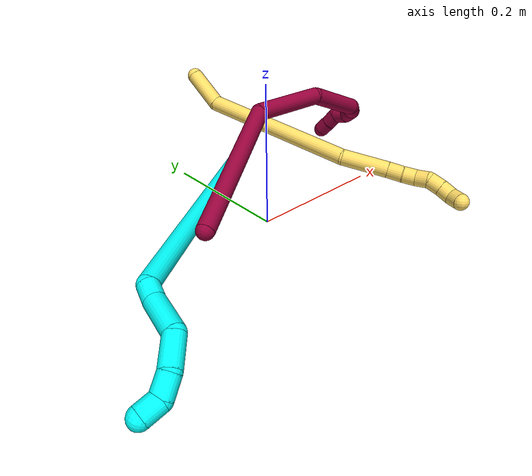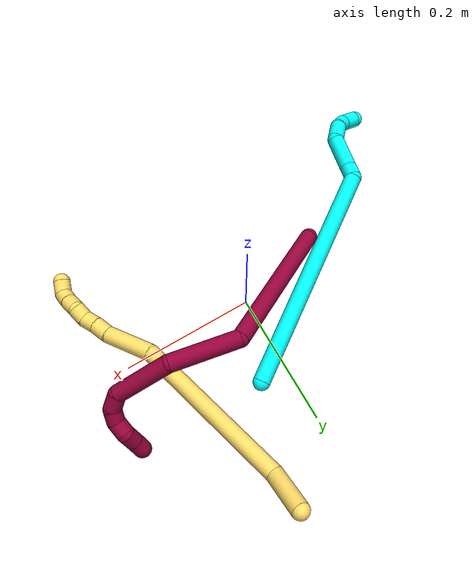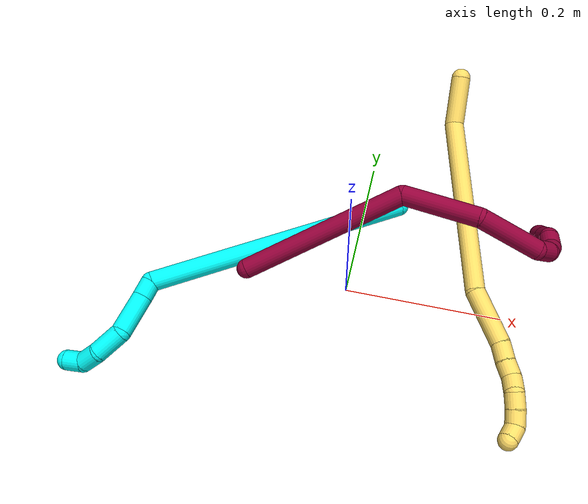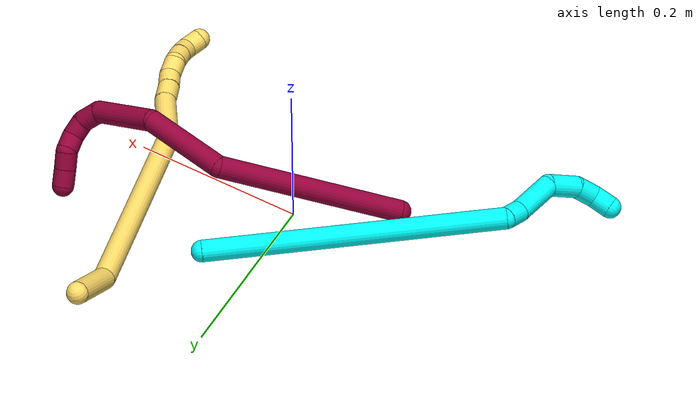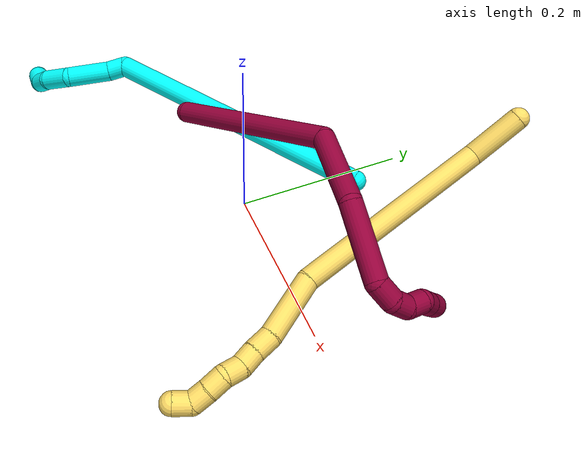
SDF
<sdf version="1.7">
 <world name="default">
  <model name="photoneo_s_sensor">
   <static>1</static>
   <pose>0 0 2 1.57079 1.57079 3.14159</pose>
   <link name="link">
    <inertial><mass>0.1</mass></inertial>
    <sensor name="sensor" type="depth">
     <update_rate>30</update_rate>
     <camera>
      <horizontal_fov>1.22</horizontal_fov>
      <image><width>1920</width><height>1200</height><format>B8G8R8</format></image>
      <clip><near>0.1</near><far>4</far></clip>
      <depth_camera><output>points</output></depth_camera>
     </camera>
     <plugin name="camera_plugin" filename="libgazebo_ros_depth_camera.so">
      <baseline>0.2</baseline>
      <alwaysOn>1</alwaysOn>
      <updateRate>0.0</updateRate>
      <cameraName>camera_ir</cameraName>
      <imageTopicName>/camera/color/image_raw</imageTopicName>
      <cameraInfoTopicName>/camera/color/camera_info</cameraInfoTopicName>
      <depthImageTopicName>/camera/depth/image_raw</depthImageTopicName>
      <depthImageCameraInfoTopicName>/camera/depth/camera_info</depthImageCameraInfoTopicName>
      <pointCloudTopicName>/camera/depth/points</pointCloudTopicName>
      <frameName>fr_optical</frameName>
      <pointCloudCutoff>0.1</pointCloudCutoff>
      <pointCloudCutoffMax>2.0</pointCloudCutoffMax>
      <distortionK1>0</distortionK1>
      <distortionK2>0</distortionK2>
      <distortionK3>0</distortionK3>
      <distortionT1>0</distortionT1>
      <distortionT2>0</distortionT2>
      <CxPrime>0</CxPrime>
      <Cx>0</Cx>
      <Cy>0</Cy>
      <focalLength>0</focalLength>
      <hackBaseline>0</hackBaseline>
     </plugin>
    </sensor>
   </link>
  </model>
  <model name="bin">
   <static>1</static>
   <link name="bottom">
    <collision name="collision-bottom">
     <pose>0 0 -0.01 0 -0 0</pose>
     <geometry><box><size>0.8 0.6 0.02</size></box></geometry>
     <surface>
      <friction><ode><mu>100</mu><mu2>100</mu2></ode></friction>
      <contact><collide_bitmask>65535</collide_bitmask></contact>
     </surface>
    </collision>
   </link>
   <link name="west_wall">
    <collision name="collision-west_wall">
     <pose>-0.41 0 0.1 0 -0 0</pose>
     <geometry><box><size>0.02 0.6 0.2</size></box></geometry>
     <surface>
      <friction><ode><mu>100</mu><mu2>100</mu2></ode></friction>
      <contact><collide_bitmask>65535</collide_bitmask></contact>
     </surface>
    </collision>
   </link>
   <link name="east_wall">
    <collision name="collision-east_wall">
     <pose>0.41 0 0.1 0 -0 0</pose>
     <geometry><box><size>0.02 0.6 0.2</size></box></geometry>
     <surface>
      <friction><ode><mu>100</mu><mu2>100</mu2></ode></friction>
      <contact><collide_bitmask>65535</collide_bitmask></contact>
     </surface>
    </collision>
   </link>
   <link name="south_wall">
    <collision name="collision-south_wall">
     <pose>0 -0.31 0.1 0 -0 0</pose>
     <geometry><box><size>0.8 0.02 0.2</size></box></geometry>
     <surface>
      <friction><ode><mu>100</mu><mu2>100</mu2></ode></friction>
      <contact><collide_bitmask>65535</collide_bitmask></contact>
     </surface>
    </collision>
   </link>
   <link name="north_wall">
    <collision name="collision-north_wall">
     <pose>0 0.31 0.1 0 -0 0</pose>
     <geometry><box><size>0.8 0.02 0.2</size></box></geometry>
     <surface>
      <friction><ode><mu>100</mu><mu2>100</mu2></ode></friction>
      <contact><collide_bitmask>65535</collide_bitmask></contact>
     </surface>
    </collision>
   </link>
  </model>
  <model name="3">
   <static>0</static>
   <link name="3">
    <collision name="collision-cylinder-e_1_1_4">
     <pose>-0.159743 -0.045144 -0.037038 2.25788 -1.22034 -1.95191</pose>
     <geometry><cylinder><radius>0.0125</radius><length>0.340162</length></cylinder></geometry>
     <surface>
      <friction><ode><mu>1.16</mu><mu2>1.16</mu2><slip1>0</slip1><slip2>0</slip2></ode></friction>
      <contact><ode><kp>1e+06</kp><kd>1</kd><max_vel>0</max_vel><min_depth>0.001</min_depth></ode></contact>
     </surface>
    </collision>
    <visual name="visual-cylinder-e_1_1_4">
     <pose>-0.159743 -0.045144 -0.037038 2.25788 -1.22034 -1.95191</pose>
     <geometry><cylinder><radius>0.0125</radius><length>0.340162</length></cylinder></geometry>
     <material><ambient>0.003922 1 0.996078 1</ambient></material>
    </visual>
    <collision name="collision-cylinder-e_2_4_5">
     <pose>-0.326007 -0.090125 -0.083005 -3.12329 -0.630838 3.0855</pose>
     <geometry><cylinder><radius>0.0125</radius><length>0.022116</length></cylinder></geometry>
     <surface>
      <friction><ode><mu>1.16</mu><mu2>1.16</mu2><slip1>0</slip1><slip2>0</slip2></ode></friction>
      <contact><ode><kp>1e+06</kp><kd>1</kd><max_vel>0</max_vel><min_depth>0.001</min_depth></ode></contact>
     </surface>
    </collision>
    <visual name="visual-cylinder-e_2_4_5">
     <pose>-0.326007 -0.090125 -0.083005 -3.12329 -0.630838 3.0855</pose>
     <geometry><cylinder><radius>0.0125</radius><length>0.022116</length></cylinder></geometry>
     <material><ambient>0.003922 1 0.996078 1</ambient></material>
    </visual>
    <collision name="collision-cylinder-e_3_5_6">
     <pose>-0.345838 -0.095745 -0.1135 2.87961 -0.537469 -2.24919</pose>
     <geometry><cylinder><radius>0.0125</radius><length>0.051988</length></cylinder></geometry>
     <surface>
      <friction><ode><mu>1.16</mu><mu2>1.16</mu2><slip1>0</slip1><slip2>0</slip2></ode></friction>
      <contact><ode><kp>1e+06</kp><kd>1</kd><max_vel>0</max_vel><min_depth>0.001</min_depth></ode></contact>
     </surface>
    </collision>
    <visual name="visual-cylinder-e_3_5_6">
     <pose>-0.345838 -0.095745 -0.1135 2.87961 -0.537469 -2.24919</pose>
     <geometry><cylinder><radius>0.0125</radius><length>0.051988</length></cylinder></geometry>
     <material><ambient>0.003922 1 0.996078 1</ambient></material>
    </visual>
    <collision name="collision-cylinder-e_4_6_7">
     <pose>-0.375362 -0.098195 -0.143743 -2.77485 -1.05041 2.52213</pose>
     <geometry><cylinder><radius>0.0125</radius><length>0.037383</length></cylinder></geometry>
     <surface>
      <friction><ode><mu>1.16</mu><mu2>1.16</mu2><slip1>0</slip1><slip2>0</slip2></ode></friction>
      <contact><ode><kp>1e+06</kp><kd>1</kd><max_vel>0</max_vel><min_depth>0.001</min_depth></ode></contact>
     </surface>
    </collision>
    <visual name="visual-cylinder-e_4_6_7">
     <pose>-0.375362 -0.098195 -0.143743 -2.77485 -1.05041 2.52213</pose>
     <geometry><cylinder><radius>0.0125</radius><length>0.037383</length></cylinder></geometry>
     <material><ambient>0.003922 1 0.996078 1</ambient></material>
    </visual>
    <collision name="collision-cylinder-e_5_7_8">
     <pose>-0.402612 -0.089337 -0.155088 -2.0208 -1.06318 1.50591</pose>
     <geometry><cylinder><radius>0.0125</radius><length>0.025248</length></cylinder></geometry>
     <surface>
      <friction><ode><mu>1.16</mu><mu2>1.16</mu2><slip1>0</slip1><slip2>0</slip2></ode></friction>
      <contact><ode><kp>1e+06</kp><kd>1</kd><max_vel>0</max_vel><min_depth>0.001</min_depth></ode></contact>
     </surface>
    </collision>
    <visual name="visual-cylinder-e_5_7_8">
     <pose>-0.402612 -0.089337 -0.155088 -2.0208 -1.06318 1.50591</pose>
     <geometry><cylinder><radius>0.0125</radius><length>0.025248</length></cylinder></geometry>
     <material><ambient>0.003922 1 0.996078 1</ambient></material>
    </visual>
    <collision name="collision-cylinder-e_6_8_2">
     <pose>-0.424376 -0.081798 -0.153985 -0.490382 -1.1917 0.336135</pose>
     <geometry><cylinder><radius>0.0125</radius><length>0.023104</length></cylinder></geometry>
     <surface>
      <friction><ode><mu>1.16</mu><mu2>1.16</mu2><slip1>0</slip1><slip2>0</slip2></ode></friction>
      <contact><ode><kp>1e+06</kp><kd>1</kd><max_vel>0</max_vel><min_depth>0.001</min_depth></ode></contact>
     </surface>
    </collision>
    <visual name="visual-cylinder-e_6_8_2">
     <pose>-0.424376 -0.081798 -0.153985 -0.490382 -1.1917 0.336135</pose>
     <geometry><cylinder><radius>0.0125</radius><length>0.023104</length></cylinder></geometry>
     <material><ambient>0.003922 1 0.996078 1</ambient></material>
    </visual>
    <collision name="collision-sphere-2">
     <pose>-0.435107 -0.079785 -0.150214 0 -0 0</pose>
     <geometry><sphere><radius>0.0125</radius></sphere></geometry>
     <surface>
      <friction><ode><mu>1.16</mu><mu2>1.16</mu2><slip1>0</slip1><slip2>0</slip2></ode></friction>
      <contact><ode><kp>1e+06</kp><kd>1</kd><max_vel>0</max_vel><min_depth>0.001</min_depth></ode></contact>
     </surface>
    </collision>
    <visual name="visual-sphere-2">
     <pose>-0.435107 -0.079785 -0.150214 0 -0 0</pose>
     <geometry><sphere><radius>0.0125</radius></sphere></geometry>
     <material><ambient>0.003922 1 0.996078 1</ambient></material>
    </visual>
    <collision name="collision-sphere-4">
     <pose>-0.319485 -0.090288 -0.074077 0 -0 0</pose>
     <geometry><sphere><radius>0.0125</radius></sphere></geometry>
     <surface>
      <friction><ode><mu>1.16</mu><mu2>1.16</mu2><slip1>0</slip1><slip2>0</slip2></ode></friction>
      <contact><ode><kp>1e+06</kp><kd>1</kd><max_vel>0</max_vel><min_depth>0.001</min_depth></ode></contact>
     </surface>
    </collision>
    <visual name="visual-sphere-4">
     <pose>-0.319485 -0.090288 -0.074077 0 -0 0</pose>
     <geometry><sphere><radius>0.0125</radius></sphere></geometry>
     <material><ambient>0.003922 1 0.996078 1</ambient></material>
    </visual>
    <collision name="collision-sphere-1">
     <geometry><sphere><radius>0.0125</radius></sphere></geometry>
     <surface>
      <friction><ode><mu>1.16</mu><mu2>1.16</mu2><slip1>0</slip1><slip2>0</slip2></ode></friction>
      <contact><ode><kp>1e+06</kp><kd>1</kd><max_vel>0</max_vel><min_depth>0.001</min_depth></ode></contact>
     </surface>
    </collision>
    <visual name="visual-sphere-1">
     <geometry><sphere><radius>0.0125</radius></sphere></geometry>
     <material><ambient>0.003922 1 0.996078 1</ambient></material>
    </visual>
    <collision name="collision-sphere-8">
     <pose>-0.413644 -0.083811 -0.157757 0 -0 0</pose>
     <geometry><sphere><radius>0.0125</radius></sphere></geometry>
     <surface>
      <friction><ode><mu>1.16</mu><mu2>1.16</mu2><slip1>0</slip1><slip2>0</slip2></ode></friction>
      <contact><ode><kp>1e+06</kp><kd>1</kd><max_vel>0</max_vel><min_depth>0.001</min_depth></ode></contact>
     </surface>
    </collision>
    <visual name="visual-sphere-8">
     <pose>-0.413644 -0.083811 -0.157757 0 -0 0</pose>
     <geometry><sphere><radius>0.0125</radius></sphere></geometry>
     <material><ambient>0.003922 1 0.996078 1</ambient></material>
    </visual>
    <collision name="collision-sphere-5">
     <pose>-0.33253 -0.089961 -0.091933 0 -0 0</pose>
     <geometry><sphere><radius>0.0125</radius></sphere></geometry>
     <surface>
      <friction><ode><mu>1.16</mu><mu2>1.16</mu2><slip1>0</slip1><slip2>0</slip2></ode></friction>
      <contact><ode><kp>1e+06</kp><kd>1</kd><max_vel>0</max_vel><min_depth>0.001</min_depth></ode></contact>
     </surface>
    </collision>
    <visual name="visual-sphere-5">
     <pose>-0.33253 -0.089961 -0.091933 0 -0 0</pose>
     <geometry><sphere><radius>0.0125</radius></sphere></geometry>
     <material><ambient>0.003922 1 0.996078 1</ambient></material>
    </visual>
    <collision name="collision-sphere-6">
     <pose>-0.359145 -0.101528 -0.135067 0 -0 0</pose>
     <geometry><sphere><radius>0.0125</radius></sphere></geometry>
     <surface>
      <friction><ode><mu>1.16</mu><mu2>1.16</mu2><slip1>0</slip1><slip2>0</slip2></ode></friction>
      <contact><ode><kp>1e+06</kp><kd>1</kd><max_vel>0</max_vel><min_depth>0.001</min_depth></ode></contact>
     </surface>
    </collision>
    <visual name="visual-sphere-6">
     <pose>-0.359145 -0.101528 -0.135067 0 -0 0</pose>
     <geometry><sphere><radius>0.0125</radius></sphere></geometry>
     <material><ambient>0.003922 1 0.996078 1</ambient></material>
    </visual>
    <collision name="collision-sphere-7">
     <pose>-0.391579 -0.094863 -0.152418 0 -0 0</pose>
     <geometry><sphere><radius>0.0125</radius></sphere></geometry>
     <surface>
      <friction><ode><mu>1.16</mu><mu2>1.16</mu2><slip1>0</slip1><slip2>0</slip2></ode></friction>
      <contact><ode><kp>1e+06</kp><kd>1</kd><max_vel>0</max_vel><min_depth>0.001</min_depth></ode></contact>
     </surface>
    </collision>
    <visual name="visual-sphere-7">
     <pose>-0.391579 -0.094863 -0.152418 0 -0 0</pose>
     <geometry><sphere><radius>0.0125</radius></sphere></geometry>
     <material><ambient>0.003922 1 0.996078 1</ambient></material>
    </visual>
    <inertial>
     <pose>-0.227059 -0.060287 -0.066364 0 -0 0</pose>
     <mass>0.5</mass>
     <inertia>
      <ixx>-0.001521</ixx>
      <ixy>0</ixy>
      <ixz>0</ixz>
      <iyy>0.001955</iyy>
      <iyz>0</iyz>
      <izz>0.003973</izz>
     </inertia>
    </inertial>
   </link>
   <pose>0.046203 0.12087 0.037105 -1.35994 -0.162917 0.33762</pose>
  </model>
  <model name="5">
   <static>0</static>
   <link name="5">
    <collision name="collision-cylinder-e_1_1_4">
     <pose>0.017972 -0.014933 0.021381 0.609666 0.603383 0.195204</pose>
     <geometry><cylinder><radius>0.0125</radius><length>0.063343</length></cylinder></geometry>
     <surface>
      <friction><ode><mu>1.16</mu><mu2>1.16</mu2><slip1>0</slip1><slip2>0</slip2></ode></friction>
      <contact><ode><kp>1e+06</kp><kd>1</kd><max_vel>0</max_vel><min_depth>0.001</min_depth></ode></contact>
     </surface>
    </collision>
    <visual name="visual-cylinder-e_1_1_4">
     <pose>0.017972 -0.014933 0.021381 0.609666 0.603383 0.195204</pose>
     <geometry><cylinder><radius>0.0125</radius><length>0.063343</length></cylinder></geometry>
     <material><ambient>1 0.858824 0.4 1</ambient></material>
    </visual>
    <collision name="collision-cylinder-e_2_4_5">
     <pose>0.115864 -0.113345 0.075742 1.19454 0.727484 0.506706</pose>
     <geometry><cylinder><radius>0.0125</radius><length>0.240366</length></cylinder></geometry>
     <surface>
      <friction><ode><mu>1.16</mu><mu2>1.16</mu2><slip1>0</slip1><slip2>0</slip2></ode></friction>
      <contact><ode><kp>1e+06</kp><kd>1</kd><max_vel>0</max_vel><min_depth>0.001</min_depth></ode></contact>
     </surface>
    </collision>
    <visual name="visual-cylinder-e_2_4_5">
     <pose>0.115864 -0.113345 0.075742 1.19454 0.727484 0.506706</pose>
     <geometry><cylinder><radius>0.0125</radius><length>0.240366</length></cylinder></geometry>
     <material><ambient>1 0.858824 0.4 1</ambient></material>
    </visual>
    <collision name="collision-cylinder-e_3_5_6">
     <pose>0.210156 -0.228835 0.116954 1.31909 0.410161 0.319809</pose>
     <geometry><cylinder><radius>0.0125</radius><length>0.072081</length></cylinder></geometry>
     <surface>
      <friction><ode><mu>1.16</mu><mu2>1.16</mu2><slip1>0</slip1><slip2>0</slip2></ode></friction>
      <contact><ode><kp>1e+06</kp><kd>1</kd><max_vel>0</max_vel><min_depth>0.001</min_depth></ode></contact>
     </surface>
    </collision>
    <visual name="visual-cylinder-e_3_5_6">
     <pose>0.210156 -0.228835 0.116954 1.31909 0.410161 0.319809</pose>
     <geometry><cylinder><radius>0.0125</radius><length>0.072081</length></cylinder></geometry>
     <material><ambient>1 0.858824 0.4 1</ambient></material>
    </visual>
    <collision name="collision-cylinder-e_4_6_7">
     <pose>0.231635 -0.270024 0.12758 1.31567 0.643035 0.503764</pose>
     <geometry><cylinder><radius>0.0125</radius><length>0.023709</length></cylinder></geometry>
     <surface>
      <friction><ode><mu>1.16</mu><mu2>1.16</mu2><slip1>0</slip1><slip2>0</slip2></ode></friction>
      <contact><ode><kp>1e+06</kp><kd>1</kd><max_vel>0</max_vel><min_depth>0.001</min_depth></ode></contact>
     </surface>
    </collision>
    <visual name="visual-cylinder-e_4_6_7">
     <pose>0.231635 -0.270024 0.12758 1.31567 0.643035 0.503764</pose>
     <geometry><cylinder><radius>0.0125</radius><length>0.023709</length></cylinder></geometry>
     <material><ambient>1 0.858824 0.4 1</ambient></material>
    </visual>
    <collision name="collision-cylinder-e_5_7_8">
     <pose>0.243871 -0.287673 0.131828 1.35532 0.534087 0.433435</pose>
     <geometry><cylinder><radius>0.0125</radius><length>0.020144</length></cylinder></geometry>
     <surface>
      <friction><ode><mu>1.16</mu><mu2>1.16</mu2><slip1>0</slip1><slip2>0</slip2></ode></friction>
      <contact><ode><kp>1e+06</kp><kd>1</kd><max_vel>0</max_vel><min_depth>0.001</min_depth></ode></contact>
     </surface>
    </collision>
    <visual name="visual-cylinder-e_5_7_8">
     <pose>0.243871 -0.287673 0.131828 1.35532 0.534087 0.433435</pose>
     <geometry><cylinder><radius>0.0125</radius><length>0.020144</length></cylinder></geometry>
     <material><ambient>1 0.858824 0.4 1</ambient></material>
    </visual>
    <collision name="collision-cylinder-e_6_8_9">
     <pose>0.256672 -0.302812 0.133859 1.54424 0.85506 0.835194</pose>
     <geometry><cylinder><radius>0.0125</radius><length>0.02034</length></cylinder></geometry>
     <surface>
      <friction><ode><mu>1.16</mu><mu2>1.16</mu2><slip1>0</slip1><slip2>0</slip2></ode></friction>
      <contact><ode><kp>1e+06</kp><kd>1</kd><max_vel>0</max_vel><min_depth>0.001</min_depth></ode></contact>
     </surface>
    </collision>
    <visual name="visual-cylinder-e_6_8_9">
     <pose>0.256672 -0.302812 0.133859 1.54424 0.85506 0.835194</pose>
     <geometry><cylinder><radius>0.0125</radius><length>0.02034</length></cylinder></geometry>
     <material><ambient>1 0.858824 0.4 1</ambient></material>
    </visual>
    <collision name="collision-cylinder-e_7_9_10">
     <pose>0.270219 -0.316116 0.138678 0.960222 0.627523 0.334785</pose>
     <geometry><cylinder><radius>0.0125</radius><length>0.020003</length></cylinder></geometry>
     <surface>
      <friction><ode><mu>1.16</mu><mu2>1.16</mu2><slip1>0</slip1><slip2>0</slip2></ode></friction>
      <contact><ode><kp>1e+06</kp><kd>1</kd><max_vel>0</max_vel><min_depth>0.001</min_depth></ode></contact>
     </surface>
    </collision>
    <visual name="visual-cylinder-e_7_9_10">
     <pose>0.270219 -0.316116 0.138678 0.960222 0.627523 0.334785</pose>
     <geometry><cylinder><radius>0.0125</radius><length>0.020003</length></cylinder></geometry>
     <material><ambient>1 0.858824 0.4 1</ambient></material>
    </visual>
    <collision name="collision-cylinder-e_8_10_11">
     <pose>0.282247 -0.328514 0.148703 0.819538 0.662678 0.296661</pose>
     <geometry><cylinder><radius>0.0125</radius><length>0.020011</length></cylinder></geometry>
     <surface>
      <friction><ode><mu>1.16</mu><mu2>1.16</mu2><slip1>0</slip1><slip2>0</slip2></ode></friction>
      <contact><ode><kp>1e+06</kp><kd>1</kd><max_vel>0</max_vel><min_depth>0.001</min_depth></ode></contact>
     </surface>
    </collision>
    <visual name="visual-cylinder-e_8_10_11">
     <pose>0.282247 -0.328514 0.148703 0.819538 0.662678 0.296661</pose>
     <geometry><cylinder><radius>0.0125</radius><length>0.020011</length></cylinder></geometry>
     <material><ambient>1 0.858824 0.4 1</ambient></material>
    </visual>
    <collision name="collision-cylinder-e_9_11_2">
     <pose>0.298165 -0.335908 0.155528 0.846834 1.35159 0.693449</pose>
     <geometry><cylinder><radius>0.0125</radius><length>0.020004</length></cylinder></geometry>
     <surface>
      <friction><ode><mu>1.16</mu><mu2>1.16</mu2><slip1>0</slip1><slip2>0</slip2></ode></friction>
      <contact><ode><kp>1e+06</kp><kd>1</kd><max_vel>0</max_vel><min_depth>0.001</min_depth></ode></contact>
     </surface>
    </collision>
    <visual name="visual-cylinder-e_9_11_2">
     <pose>0.298165 -0.335908 0.155528 0.846834 1.35159 0.693449</pose>
     <geometry><cylinder><radius>0.0125</radius><length>0.020004</length></cylinder></geometry>
     <material><ambient>1 0.858824 0.4 1</ambient></material>
    </visual>
    <collision name="collision-sphere-2">
     <pose>0.307928 -0.337538 0.156968 0 -0 0</pose>
     <geometry><sphere><radius>0.0125</radius></sphere></geometry>
     <surface>
      <friction><ode><mu>1.16</mu><mu2>1.16</mu2><slip1>0</slip1><slip2>0</slip2></ode></friction>
      <contact><ode><kp>1e+06</kp><kd>1</kd><max_vel>0</max_vel><min_depth>0.001</min_depth></ode></contact>
     </surface>
    </collision>
    <visual name="visual-sphere-2">
     <pose>0.307928 -0.337538 0.156968 0 -0 0</pose>
     <geometry><sphere><radius>0.0125</radius></sphere></geometry>
     <material><ambient>1 0.858824 0.4 1</ambient></material>
    </visual>
    <collision name="collision-sphere-11">
     <pose>0.288402 -0.334279 0.154087 0 -0 0</pose>
     <geometry><sphere><radius>0.0125</radius></sphere></geometry>
     <surface>
      <friction><ode><mu>1.16</mu><mu2>1.16</mu2><slip1>0</slip1><slip2>0</slip2></ode></friction>
      <contact><ode><kp>1e+06</kp><kd>1</kd><max_vel>0</max_vel><min_depth>0.001</min_depth></ode></contact>
     </surface>
    </collision>
    <visual name="visual-sphere-11">
     <pose>0.288402 -0.334279 0.154087 0 -0 0</pose>
     <geometry><sphere><radius>0.0125</radius></sphere></geometry>
     <material><ambient>1 0.858824 0.4 1</ambient></material>
    </visual>
    <collision name="collision-sphere-10">
     <pose>0.276091 -0.32275 0.14332 0 -0 0</pose>
     <geometry><sphere><radius>0.0125</radius></sphere></geometry>
     <surface>
      <friction><ode><mu>1.16</mu><mu2>1.16</mu2><slip1>0</slip1><slip2>0</slip2></ode></friction>
      <contact><ode><kp>1e+06</kp><kd>1</kd><max_vel>0</max_vel><min_depth>0.001</min_depth></ode></contact>
     </surface>
    </collision>
    <visual name="visual-sphere-10">
     <pose>0.276091 -0.32275 0.14332 0 -0 0</pose>
     <geometry><sphere><radius>0.0125</radius></sphere></geometry>
     <material><ambient>1 0.858824 0.4 1</ambient></material>
    </visual>
    <collision name="collision-sphere-9">
     <pose>0.264347 -0.309483 0.134036 0 -0 0</pose>
     <geometry><sphere><radius>0.0125</radius></sphere></geometry>
     <surface>
      <friction><ode><mu>1.16</mu><mu2>1.16</mu2><slip1>0</slip1><slip2>0</slip2></ode></friction>
      <contact><ode><kp>1e+06</kp><kd>1</kd><max_vel>0</max_vel><min_depth>0.001</min_depth></ode></contact>
     </surface>
    </collision>
    <visual name="visual-sphere-9">
     <pose>0.264347 -0.309483 0.134036 0 -0 0</pose>
     <geometry><sphere><radius>0.0125</radius></sphere></geometry>
     <material><ambient>1 0.858824 0.4 1</ambient></material>
    </visual>
    <collision name="collision-sphere-4">
     <pose>0.035943 -0.029865 0.042761 0 -0 0</pose>
     <geometry><sphere><radius>0.0125</radius></sphere></geometry>
     <surface>
      <friction><ode><mu>1.16</mu><mu2>1.16</mu2><slip1>0</slip1><slip2>0</slip2></ode></friction>
      <contact><ode><kp>1e+06</kp><kd>1</kd><max_vel>0</max_vel><min_depth>0.001</min_depth></ode></contact>
     </surface>
    </collision>
    <visual name="visual-sphere-4">
     <pose>0.035943 -0.029865 0.042761 0 -0 0</pose>
     <geometry><sphere><radius>0.0125</radius></sphere></geometry>
     <material><ambient>1 0.858824 0.4 1</ambient></material>
    </visual>
    <collision name="collision-sphere-1">
     <geometry><sphere><radius>0.0125</radius></sphere></geometry>
     <surface>
      <friction><ode><mu>1.16</mu><mu2>1.16</mu2><slip1>0</slip1><slip2>0</slip2></ode></friction>
      <contact><ode><kp>1e+06</kp><kd>1</kd><max_vel>0</max_vel><min_depth>0.001</min_depth></ode></contact>
     </surface>
    </collision>
    <visual name="visual-sphere-1">
     <geometry><sphere><radius>0.0125</radius></sphere></geometry>
     <material><ambient>1 0.858824 0.4 1</ambient></material>
    </visual>
    <collision name="collision-sphere-8">
     <pose>0.248998 -0.296141 0.133682 0 -0 0</pose>
     <geometry><sphere><radius>0.0125</radius></sphere></geometry>
     <surface>
      <friction><ode><mu>1.16</mu><mu2>1.16</mu2><slip1>0</slip1><slip2>0</slip2></ode></friction>
      <contact><ode><kp>1e+06</kp><kd>1</kd><max_vel>0</max_vel><min_depth>0.001</min_depth></ode></contact>
     </surface>
    </collision>
    <visual name="visual-sphere-8">
     <pose>0.248998 -0.296141 0.133682 0 -0 0</pose>
     <geometry><sphere><radius>0.0125</radius></sphere></geometry>
     <material><ambient>1 0.858824 0.4 1</ambient></material>
    </visual>
    <collision name="collision-sphere-5">
     <pose>0.195785 -0.196825 0.108723 0 -0 0</pose>
     <geometry><sphere><radius>0.0125</radius></sphere></geometry>
     <surface>
      <friction><ode><mu>1.16</mu><mu2>1.16</mu2><slip1>0</slip1><slip2>0</slip2></ode></friction>
      <contact><ode><kp>1e+06</kp><kd>1</kd><max_vel>0</max_vel><min_depth>0.001</min_depth></ode></contact>
     </surface>
    </collision>
    <visual name="visual-sphere-5">
     <pose>0.195785 -0.196825 0.108723 0 -0 0</pose>
     <geometry><sphere><radius>0.0125</radius></sphere></geometry>
     <material><ambient>1 0.858824 0.4 1</ambient></material>
    </visual>
    <collision name="collision-sphere-6">
     <pose>0.224527 -0.260844 0.125186 0 -0 0</pose>
     <geometry><sphere><radius>0.0125</radius></sphere></geometry>
     <surface>
      <friction><ode><mu>1.16</mu><mu2>1.16</mu2><slip1>0</slip1><slip2>0</slip2></ode></friction>
      <contact><ode><kp>1e+06</kp><kd>1</kd><max_vel>0</max_vel><min_depth>0.001</min_depth></ode></contact>
     </surface>
    </collision>
    <visual name="visual-sphere-6">
     <pose>0.224527 -0.260844 0.125186 0 -0 0</pose>
     <geometry><sphere><radius>0.0125</radius></sphere></geometry>
     <material><ambient>1 0.858824 0.4 1</ambient></material>
    </visual>
    <collision name="collision-sphere-7">
     <pose>0.238744 -0.279204 0.129974 0 -0 0</pose>
     <geometry><sphere><radius>0.0125</radius></sphere></geometry>
     <surface>
      <friction><ode><mu>1.16</mu><mu2>1.16</mu2><slip1>0</slip1><slip2>0</slip2></ode></friction>
      <contact><ode><kp>1e+06</kp><kd>1</kd><max_vel>0</max_vel><min_depth>0.001</min_depth></ode></contact>
     </surface>
    </collision>
    <visual name="visual-sphere-7">
     <pose>0.238744 -0.279204 0.129974 0 -0 0</pose>
     <geometry><sphere><radius>0.0125</radius></sphere></geometry>
     <material><ambient>1 0.858824 0.4 1</ambient></material>
    </visual>
    <inertial>
     <pose>0.153558 -0.165315 0.090508 0 -0 0</pose>
     <mass>0.5</mass>
     <inertia><ixx>0.00128</ixx><ixy>0</ixy><ixz>0</ixz><iyy>0.001177</iyy><iyz>0</iyz><izz>6.1e-05</izz></inertia>
    </inertial>
   </link>
   <pose>0.095726 0.288505 0.119392 3.06751 -0.232942 -2.05479</pose>
  </model>
  <model name="8">
   <static>0</static>
   <link name="8">
    <collision name="collision-cylinder-e_1_1_4">
     <pose>-0.002963 0.008562 0.106687 -0.080083 -0.027674 0.001109</pose>
     <geometry><cylinder><radius>0.0125</radius><length>0.214141</length></cylinder></geometry>
     <surface>
      <friction><ode><mu>1.16</mu><mu2>1.16</mu2><slip1>0</slip1><slip2>0</slip2></ode></friction>
      <contact><ode><kp>1e+06</kp><kd>1</kd><max_vel>0</max_vel><min_depth>0.001</min_depth></ode></contact>
     </surface>
    </collision>
    <visual name="visual-cylinder-e_1_1_4">
     <pose>-0.002963 0.008562 0.106687 -0.080083 -0.027674 0.001109</pose>
     <geometry><cylinder><radius>0.0125</radius><length>0.214141</length></cylinder></geometry>
     <material><ambient>0.584314 0 0.227451 1</ambient></material>
    </visual>
    <collision name="collision-cylinder-e_2_4_5">
     <pose>0.018708 -0.000393 0.2519 0.426728 0.527105 0.11679</pose>
     <geometry><cylinder><radius>0.0125</radius><length>0.097938</length></cylinder></geometry>
     <surface>
      <friction><ode><mu>1.16</mu><mu2>1.16</mu2><slip1>0</slip1><slip2>0</slip2></ode></friction>
      <contact><ode><kp>1e+06</kp><kd>1</kd><max_vel>0</max_vel><min_depth>0.001</min_depth></ode></contact>
     </surface>
    </collision>
    <visual name="visual-cylinder-e_2_4_5">
     <pose>0.018708 -0.000393 0.2519 0.426728 0.527105 0.11679</pose>
     <geometry><cylinder><radius>0.0125</radius><length>0.097938</length></cylinder></geometry>
     <material><ambient>0.584314 0 0.227451 1</ambient></material>
    </visual>
    <collision name="collision-cylinder-e_3_5_6">
     <pose>0.077287 -0.019817 0.314602 0.078719 0.950497 0.040523</pose>
     <geometry><cylinder><radius>0.0125</radius><length>0.083436</length></cylinder></geometry>
     <surface>
      <friction><ode><mu>1.16</mu><mu2>1.16</mu2><slip1>0</slip1><slip2>0</slip2></ode></friction>
      <contact><ode><kp>1e+06</kp><kd>1</kd><max_vel>0</max_vel><min_depth>0.001</min_depth></ode></contact>
     </surface>
    </collision>
    <visual name="visual-cylinder-e_3_5_6">
     <pose>0.077287 -0.019817 0.314602 0.078719 0.950497 0.040523</pose>
     <geometry><cylinder><radius>0.0125</radius><length>0.083436</length></cylinder></geometry>
     <material><ambient>0.584314 0 0.227451 1</ambient></material>
    </visual>
    <collision name="collision-cylinder-e_4_6_7">
     <pose>0.119482 -0.015144 0.344751 -0.833583 0.748139 -0.344151</pose>
     <geometry><cylinder><radius>0.0125</radius><length>0.024252</length></cylinder></geometry>
     <surface>
      <friction><ode><mu>1.16</mu><mu2>1.16</mu2><slip1>0</slip1><slip2>0</slip2></ode></friction>
      <contact><ode><kp>1e+06</kp><kd>1</kd><max_vel>0</max_vel><min_depth>0.001</min_depth></ode></contact>
     </surface>
    </collision>
    <visual name="visual-cylinder-e_4_6_7">
     <pose>0.119482 -0.015144 0.344751 -0.833583 0.748139 -0.344151</pose>
     <geometry><cylinder><radius>0.0125</radius><length>0.024252</length></cylinder></geometry>
     <material><ambient>0.584314 0 0.227451 1</ambient></material>
    </visual>
    <collision name="collision-cylinder-e_5_7_8">
     <pose>0.131423 0.000443 0.35315 -1.30786 0.376904 -0.290281</pose>
     <geometry><cylinder><radius>0.0125</radius><length>0.020063</length></cylinder></geometry>
     <surface>
      <friction><ode><mu>1.16</mu><mu2>1.16</mu2><slip1>0</slip1><slip2>0</slip2></ode></friction>
      <contact><ode><kp>1e+06</kp><kd>1</kd><max_vel>0</max_vel><min_depth>0.001</min_depth></ode></contact>
     </surface>
    </collision>
    <visual name="visual-cylinder-e_5_7_8">
     <pose>0.131423 0.000443 0.35315 -1.30786 0.376904 -0.290281</pose>
     <geometry><cylinder><radius>0.0125</radius><length>0.020063</length></cylinder></geometry>
     <material><ambient>0.584314 0 0.227451 1</ambient></material>
    </visual>
    <collision name="collision-cylinder-e_6_8_9">
     <pose>0.133162 0.019173 0.356902 -1.43509 -0.196407 0.171542</pose>
     <geometry><cylinder><radius>0.0125</radius><length>0.020011</length></cylinder></geometry>
     <surface>
      <friction><ode><mu>1.16</mu><mu2>1.16</mu2><slip1>0</slip1><slip2>0</slip2></ode></friction>
      <contact><ode><kp>1e+06</kp><kd>1</kd><max_vel>0</max_vel><min_depth>0.001</min_depth></ode></contact>
     </surface>
    </collision>
    <visual name="visual-cylinder-e_6_8_9">
     <pose>0.133162 0.019173 0.356902 -1.43509 -0.196407 0.171542</pose>
     <geometry><cylinder><radius>0.0125</radius><length>0.020011</length></cylinder></geometry>
     <material><ambient>0.584314 0 0.227451 1</ambient></material>
    </visual>
    <collision name="collision-cylinder-e_7_9_10">
     <pose>0.134736 0.038003 0.355761 -1.83553 0.357633 -0.464032</pose>
     <geometry><cylinder><radius>0.0125</radius><length>0.020147</length></cylinder></geometry>
     <surface>
      <friction><ode><mu>1.16</mu><mu2>1.16</mu2><slip1>0</slip1><slip2>0</slip2></ode></friction>
      <contact><ode><kp>1e+06</kp><kd>1</kd><max_vel>0</max_vel><min_depth>0.001</min_depth></ode></contact>
     </surface>
    </collision>
    <visual name="visual-cylinder-e_7_9_10">
     <pose>0.134736 0.038003 0.355761 -1.83553 0.357633 -0.464032</pose>
     <geometry><cylinder><radius>0.0125</radius><length>0.020147</length></cylinder></geometry>
     <material><ambient>0.584314 0 0.227451 1</ambient></material>
    </visual>
    <collision name="collision-cylinder-e_8_10_2">
     <pose>0.141398 0.056373 0.351173 -1.79568 0.318759 -0.397995</pose>
     <geometry><cylinder><radius>0.0125</radius><length>0.020012</length></cylinder></geometry>
     <surface>
      <friction><ode><mu>1.16</mu><mu2>1.16</mu2><slip1>0</slip1><slip2>0</slip2></ode></friction>
      <contact><ode><kp>1e+06</kp><kd>1</kd><max_vel>0</max_vel><min_depth>0.001</min_depth></ode></contact>
     </surface>
    </collision>
    <visual name="visual-cylinder-e_8_10_2">
     <pose>0.141398 0.056373 0.351173 -1.79568 0.318759 -0.397995</pose>
     <geometry><cylinder><radius>0.0125</radius><length>0.020012</length></cylinder></geometry>
     <material><ambient>0.584314 0 0.227451 1</ambient></material>
    </visual>
    <collision name="collision-sphere-2">
     <pose>0.144534 0.065636 0.349054 0 -0 0</pose>
     <geometry><sphere><radius>0.0125</radius></sphere></geometry>
     <surface>
      <friction><ode><mu>1.16</mu><mu2>1.16</mu2><slip1>0</slip1><slip2>0</slip2></ode></friction>
      <contact><ode><kp>1e+06</kp><kd>1</kd><max_vel>0</max_vel><min_depth>0.001</min_depth></ode></contact>
     </surface>
    </collision>
    <visual name="visual-sphere-2">
     <pose>0.144534 0.065636 0.349054 0 -0 0</pose>
     <geometry><sphere><radius>0.0125</radius></sphere></geometry>
     <material><ambient>0.584314 0 0.227451 1</ambient></material>
    </visual>
    <collision name="collision-sphere-10">
     <pose>0.138263 0.047111 0.353292 0 -0 0</pose>
     <geometry><sphere><radius>0.0125</radius></sphere></geometry>
     <surface>
      <friction><ode><mu>1.16</mu><mu2>1.16</mu2><slip1>0</slip1><slip2>0</slip2></ode></friction>
      <contact><ode><kp>1e+06</kp><kd>1</kd><max_vel>0</max_vel><min_depth>0.001</min_depth></ode></contact>
     </surface>
    </collision>
    <visual name="visual-sphere-10">
     <pose>0.138263 0.047111 0.353292 0 -0 0</pose>
     <geometry><sphere><radius>0.0125</radius></sphere></geometry>
     <material><ambient>0.584314 0 0.227451 1</ambient></material>
    </visual>
    <collision name="collision-sphere-9">
     <pose>0.13121 0.028896 0.35823 0 -0 0</pose>
     <geometry><sphere><radius>0.0125</radius></sphere></geometry>
     <surface>
      <friction><ode><mu>1.16</mu><mu2>1.16</mu2><slip1>0</slip1><slip2>0</slip2></ode></friction>
      <contact><ode><kp>1e+06</kp><kd>1</kd><max_vel>0</max_vel><min_depth>0.001</min_depth></ode></contact>
     </surface>
    </collision>
    <visual name="visual-sphere-9">
     <pose>0.13121 0.028896 0.35823 0 -0 0</pose>
     <geometry><sphere><radius>0.0125</radius></sphere></geometry>
     <material><ambient>0.584314 0 0.227451 1</ambient></material>
    </visual>
    <collision name="collision-sphere-4">
     <pose>-0.005925 0.017124 0.213373 0 -0 0</pose>
     <geometry><sphere><radius>0.0125</radius></sphere></geometry>
     <surface>
      <friction><ode><mu>1.16</mu><mu2>1.16</mu2><slip1>0</slip1><slip2>0</slip2></ode></friction>
      <contact><ode><kp>1e+06</kp><kd>1</kd><max_vel>0</max_vel><min_depth>0.001</min_depth></ode></contact>
     </surface>
    </collision>
    <visual name="visual-sphere-4">
     <pose>-0.005925 0.017124 0.213373 0 -0 0</pose>
     <geometry><sphere><radius>0.0125</radius></sphere></geometry>
     <material><ambient>0.584314 0 0.227451 1</ambient></material>
    </visual>
    <collision name="collision-sphere-1">
     <geometry><sphere><radius>0.0125</radius></sphere></geometry>
     <surface>
      <friction><ode><mu>1.16</mu><mu2>1.16</mu2><slip1>0</slip1><slip2>0</slip2></ode></friction>
      <contact><ode><kp>1e+06</kp><kd>1</kd><max_vel>0</max_vel><min_depth>0.001</min_depth></ode></contact>
     </surface>
    </collision>
    <visual name="visual-sphere-1">
     <geometry><sphere><radius>0.0125</radius></sphere></geometry>
     <material><ambient>0.584314 0 0.227451 1</ambient></material>
    </visual>
    <collision name="collision-sphere-8">
     <pose>0.135115 0.00945 0.355575 0 -0 0</pose>
     <geometry><sphere><radius>0.0125</radius></sphere></geometry>
     <surface>
      <friction><ode><mu>1.16</mu><mu2>1.16</mu2><slip1>0</slip1><slip2>0</slip2></ode></friction>
      <contact><ode><kp>1e+06</kp><kd>1</kd><max_vel>0</max_vel><min_depth>0.001</min_depth></ode></contact>
     </surface>
    </collision>
    <visual name="visual-sphere-8">
     <pose>0.135115 0.00945 0.355575 0 -0 0</pose>
     <geometry><sphere><radius>0.0125</radius></sphere></geometry>
     <material><ambient>0.584314 0 0.227451 1</ambient></material>
    </visual>
    <collision name="collision-sphere-5">
     <pose>0.043341 -0.01791 0.290427 0 -0 0</pose>
     <geometry><sphere><radius>0.0125</radius></sphere></geometry>
     <surface>
      <friction><ode><mu>1.16</mu><mu2>1.16</mu2><slip1>0</slip1><slip2>0</slip2></ode></friction>
      <contact><ode><kp>1e+06</kp><kd>1</kd><max_vel>0</max_vel><min_depth>0.001</min_depth></ode></contact>
     </surface>
    </collision>
    <visual name="visual-sphere-5">
     <pose>0.043341 -0.01791 0.290427 0 -0 0</pose>
     <geometry><sphere><radius>0.0125</radius></sphere></geometry>
     <material><ambient>0.584314 0 0.227451 1</ambient></material>
    </visual>
    <collision name="collision-sphere-6">
     <pose>0.111233 -0.021724 0.338777 0 -0 0</pose>
     <geometry><sphere><radius>0.0125</radius></sphere></geometry>
     <surface>
      <friction><ode><mu>1.16</mu><mu2>1.16</mu2><slip1>0</slip1><slip2>0</slip2></ode></friction>
      <contact><ode><kp>1e+06</kp><kd>1</kd><max_vel>0</max_vel><min_depth>0.001</min_depth></ode></contact>
     </surface>
    </collision>
    <visual name="visual-sphere-6">
     <pose>0.111233 -0.021724 0.338777 0 -0 0</pose>
     <geometry><sphere><radius>0.0125</radius></sphere></geometry>
     <material><ambient>0.584314 0 0.227451 1</ambient></material>
    </visual>
    <collision name="collision-sphere-7">
     <pose>0.127731 -0.008564 0.350726 0 -0 0</pose>
     <geometry><sphere><radius>0.0125</radius></sphere></geometry>
     <surface>
      <friction><ode><mu>1.16</mu><mu2>1.16</mu2><slip1>0</slip1><slip2>0</slip2></ode></friction>
      <contact><ode><kp>1e+06</kp><kd>1</kd><max_vel>0</max_vel><min_depth>0.001</min_depth></ode></contact>
     </surface>
    </collision>
    <visual name="visual-sphere-7">
     <pose>0.127731 -0.008564 0.350726 0 -0 0</pose>
     <geometry><sphere><radius>0.0125</radius></sphere></geometry>
     <material><ambient>0.584314 0 0.227451 1</ambient></material>
    </visual>
    <inertial>
     <pose>0.042779 0.004121 0.221098 0 -0 0</pose>
     <mass>0.5</mass>
     <inertia>
      <ixx>0.000953</ixx>
      <ixy>0</ixy>
      <ixz>0</ixz>
      <iyy>0.000968</iyy>
      <iyz>0</iyz>
      <izz>-7.7e-05</izz>
     </inertia>
    </inertial>
   </link>
   <pose>-0.123055 -0.026654 0.052853 -0.892548 0.939607 -0.571224</pose>
  </model>
 </world>
</sdf>
